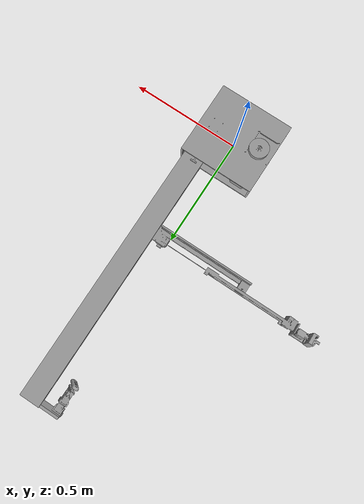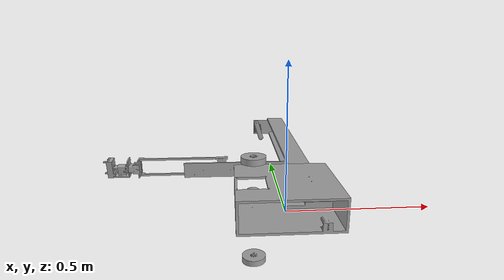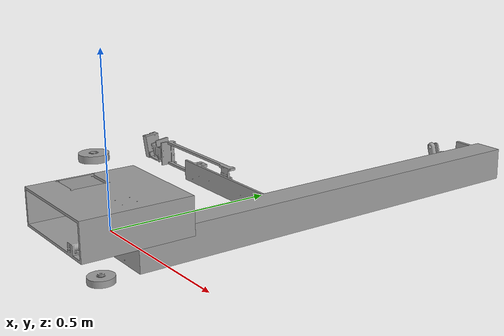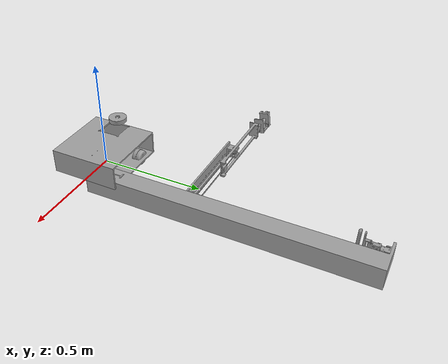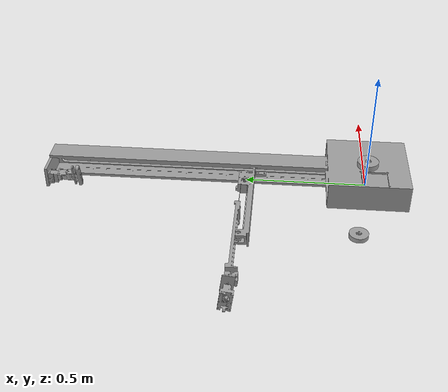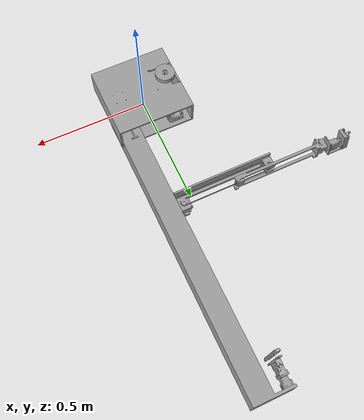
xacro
<?xml version="1.0" ?>
<robot name="ssmm_robot" xmlns:xacro="http://www.ros.org/wiki/xacro">

<xacro:include filename="$(find ssmm_robot_description)/urdf/materials.xacro" />
<xacro:include filename="$(find ssmm_robot_description)/urdf/ssmm_robot.trans" />
<xacro:include filename="$(find ssmm_robot_description)/urdf/ssmm_robot.gazebo" />
  <!-- Joint Control -->
  <gazebo>
    <plugin name="gazebo_ros_control" filename="libgazebo_ros_control.so">
      <robotNamespace>/</robotNamespace>
    </plugin>
  </gazebo>
  <gazebo reference="base_to_lw">
      <mu1 value="100.0"/>
      <mu2 value="200.0"/>
      <kp value="10000000.0" />
      <kd value="100.0" />
      <material>Gazebo/Blue</material>
      <minDepth>0.001</minDepth>
  </gazebo>

  <gazebo reference="base_to_rw">
      <mu1 value="100.0"/>
      <mu2 value="200.0"/>
      <kp value="10000000.0" />
      <kd value="100.0" />
      <material>Gazebo/Blue</material>
      <minDepth>0.001</minDepth>
  </gazebo>

  <gazebo reference="link1_to_2">
      <mu1 value="100.0"/>
      <mu2 value="200.0"/>
      <kp value="10000000.0" />
      <kd value="100.0" />
      <material>Gazebo/Blue</material>
      <minDepth>0.001</minDepth>
  </gazebo>

  <gazebo reference="link2_to_3">
      <mu1 value="100.0"/>
      <mu2 value="200.0"/>
      <kp value="10000000.0" />
      <kd value="100.0" />
      <material>Gazebo/Blue</material>
      <minDepth>0.001</minDepth>
  </gazebo>

  <gazebo reference="ee_to_finger">
      <mu1 value="100.0"/>
      <mu2 value="200.0"/>
      <kp value="10000000.0" />
      <kd value="100.0" />
      <material>Gazebo/Blue</material>
      <minDepth>0.001</minDepth>
  </gazebo>

  <gazebo reference="link3_to_ee">
      <mu1 value="100.0"/>
      <mu2 value="200.0"/>
      <kp value="10000000.0" />
      <kd value="100.0" />
      <material>Gazebo/Blue</material>
      <minDepth>0.001</minDepth>
  </gazebo>

  <gazebo reference="clink1_to_2">
      <mu1 value="100.0"/>
      <mu2 value="200.0"/>
      <kp value="10000000.0" />
      <kd value="100.0" />
      <material>Gazebo/Blue</material>
      <minDepth>0.001</minDepth>
  </gazebo>

  <gazebo reference="clink2_to_cam">
      <mu1 value="100.0"/>
      <mu2 value="200.0"/>
      <kp value="10000000.0" />
      <kd value="100.0" />
      <material>Gazebo/Blue</material>
      <minDepth>0.001</minDepth>
  </gazebo>

  <gazebo reference="link1_to_clink1">
      <mu1 value="100.0"/>
      <mu2 value="200.0"/>
      <kp value="10000000.0" />
      <kd value="100.0" />
      <material>Gazebo/Blue</material>
      <minDepth>0.001</minDepth>
  </gazebo>

  <!-- diff_drive controller -->
  <gazebo>
    <plugin filename="libgazebo_ros_diff_drive.so" name="diff_drive">
      <ros>
        <namespace>/ssmm_robot</namespace>
      </ros>
      <!-- wheels -->
      <left_joint>base_to_lw</left_joint>
      <right_joint>base_to_rw</right_joint>
      <!-- kinematics -->
      <wheel_separation>0.365</wheel_separation>
      <wheel_diameter>0.02</wheel_diameter>
      <!-- limits -->
      <max_wheel_torque>10</max_wheel_torque>
      <max_wheel_acceleration>1.0</max_wheel_acceleration>
      <!-- output -->
      <publish_odom>true</publish_odom>
      <publish_odom_tf>true</publish_odom_tf>
      <publish_wheel_tf>true</publish_wheel_tf>
      <odometry_frame>odom</odometry_frame>
      <robot_base_frame>robot_footprint</robot_base_frame>
    </plugin>
  </gazebo>
  <gazebo reference="laser">
    <sensor name="head_rplidar_sensor" type="ray">
      <pose>0 0 0.06 0 0 0</pose>
      <visualize>false</visualize>
      <update_rate>40</update_rate>
      <ray>
        <scan>
          <horizontal>
            <samples>720</samples>
            <resolution>1</resolution>
            <min_angle>-3.14159265</min_angle>
            <max_angle>3.14159265</max_angle>
          </horizontal>
        </scan>
        <range>
          <min>0.2</min>
          <max>12.0</max>
          <resolution>0.01</resolution>
        </range>
        <noise>
          <type>gaussian</type>
          <mean>0.0</mean>
          <stddev>0.01</stddev>
        </noise>
      </ray>
      <plugin filename="libgazebo_ros_laser.so" name="gazebo_ros_head_rplidar_controller">
        <topicName>scan</topicName>
        <frameName>laser</frameName>
      </plugin>
    </sensor>
  </gazebo>

<link name="base_link">
  <inertial>
    <origin xyz="-0.005863107158817645 0.04575054627281796 0.0007562083206319891" rpy="0 0 0"/>
    <mass value="30.87189983413398"/>
    <inertia ixx="0.211334" iyy="0.411846" izz="0.283613" ixy="0.003467" iyz="-0.000758" ixz="-0.001619"/>
  </inertial>
  <visual>
    <origin xyz="0 0 0" rpy="0 0 0"/>
    <geometry>
      <mesh filename="file://$(find ssmm_robot_description)/meshes/base_link.stl" scale="0.001 0.001 0.001"/>
    </geometry>
    <material name="Steel-Satin"/>
  </visual>
  <collision>
    <origin xyz="0 0 0" rpy="0 0 0"/>
    <geometry>
      <mesh filename="file://$(find ssmm_robot_description)/meshes/base_link.stl" scale="0.001 0.001 0.001"/>
    </geometry>
  </collision>
</link>

<link name="right_wheel_1">
  <inertial>
    <origin xyz="-5.182139952986109e-07 2.113675778504104e-06 -0.010701855614137695" rpy="0 0 0"/>
    <mass value="2.9090455014442554"/>
    <inertia ixx="0.000439" iyy="0.000439" izz="0.000806" ixy="-0.0" iyz="-0.0" ixz="0.0"/>
  </inertial>
  <visual>
    <origin xyz="0.1065 -0.013805 0.172" rpy="0 0 0"/>
    <geometry>
      <mesh filename="file://$(find ssmm_robot_description)/meshes/right_wheel_1.stl" scale="0.001 0.001 0.001"/>
    </geometry>
    <material name="Steel-Satin"/>
  </visual>
  <collision>
    <origin xyz="0.1065 -0.013805 0.172" rpy="0 0 0"/>
    <geometry>
      <mesh filename="file://$(find ssmm_robot_description)/meshes/right_wheel_1.stl" scale="0.001 0.001 0.001"/>
    </geometry>
  </collision>
</link>

<link name="left_wheel_1">
  <inertial>
    <origin xyz="1.7220952615165652e-06 4.37429839772116e-07 0.010701855614138778" rpy="0 0 0"/>
    <mass value="2.9090455014442554"/>
    <inertia ixx="0.000439" iyy="0.000439" izz="0.000806" ixy="-0.0" iyz="-0.0" ixz="0.0"/>
  </inertial>
  <visual>
    <origin xyz="0.1065 -0.013805 -0.172" rpy="0 0 0"/>
    <geometry>
      <mesh filename="file://$(find ssmm_robot_description)/meshes/left_wheel_1.stl" scale="0.001 0.001 0.001"/>
    </geometry>
    <material name="Steel-Satin"/>
  </visual>
  <collision>
    <origin xyz="0.1065 -0.013805 -0.172" rpy="0 0 0"/>
    <geometry>
      <mesh filename="file://$(find ssmm_robot_description)/meshes/left_wheel_1.stl" scale="0.001 0.001 0.001"/>
    </geometry>
  </collision>
</link>

<link name="lidar_1">
  <inertial>
    <origin xyz="0.02184456766960491 0.01847175439835766 -0.020891965661404416" rpy="0 0 0"/>
    <mass value="1.2417406970778717"/>
    <inertia ixx="0.00057" iyy="0.000824" izz="0.000571" ixy="-1.4e-05" iyz="0.0" ixz="-0.0"/>
  </inertial>
  <visual>
    <origin xyz="0.12286 -0.105805 -0.02086" rpy="0 0 0"/>
    <geometry>
      <mesh filename="file://$(find ssmm_robot_description)/meshes/lidar_1.stl" scale="0.001 0.001 0.001"/>
    </geometry>
    <material name="Steel-Satin"/>
  </visual>
  <collision>
    <origin xyz="0.12286 -0.105805 -0.02086" rpy="0 0 0"/>
    <geometry>
      <mesh filename="file://$(find ssmm_robot_description)/meshes/lidar_1.stl" scale="0.001 0.001 0.001"/>
    </geometry>
  </collision>
</link>

<link name="link1_1">
  <inertial>
    <origin xyz="-0.04033138487092916 0.6633077556425968 -0.01812836603627352" rpy="0 0 0"/>
    <mass value="5.96780432628329"/>
    <inertia ixx="7.154031" iyy="0.104871" izz="7.147721" ixy="-0.043124" iyz="0.009354" ixz="0.002741"/>
  </inertial>
  <visual>
    <origin xyz="-0.162 0.000195 -0.0" rpy="0 0 0"/>
    <geometry>
      <mesh filename="file://$(find ssmm_robot_description)/meshes/link1_1.stl" scale="0.001 0.001 0.001"/>
    </geometry>
    <material name="Steel-Satin"/>
  </visual>
  <collision>
    <origin xyz="-0.162 0.000195 -0.0" rpy="0 0 0"/>
    <geometry>
      <mesh filename="file://$(find ssmm_robot_description)/meshes/link1_1.stl" scale="0.001 0.001 0.001"/>
    </geometry>
  </collision>
</link>

<link name="link2_1">
  <inertial>
    <origin xyz="-0.045142791715321096 -0.19606954933097748 -0.06911332341098089" rpy="0 0 0"/>
    <mass value="3.295728592459467"/>
    <inertia ixx="0.004629" iyy="0.12256" izz="0.122353" ixy="-0.003262" iyz="0.001047" ixz="0.008336"/>
  </inertial>
  <visual>
    <origin xyz="0.043764 -0.683525 -0.042852" rpy="0 0 0"/>
    <geometry>
      <mesh filename="file://$(find ssmm_robot_description)/meshes/link2_1.stl" scale="0.001 0.001 0.001"/>
    </geometry>
    <material name="Steel-Satin"/>
  </visual>
  <collision>
    <origin xyz="0.043764 -0.683525 -0.042852" rpy="0 0 0"/>
    <geometry>
      <mesh filename="file://$(find ssmm_robot_description)/meshes/link2_1.stl" scale="0.001 0.001 0.001"/>
    </geometry>
  </collision>
</link>

<link name="link3_1">
  <inertial>
    <origin xyz="-0.2850129727947359 -0.0031400206997594937 0.029010042152578054" rpy="0 0 0"/>
    <mass value="1.5299135110418516"/>
    <inertia ixx="0.001243" iyy="0.040771" izz="0.039865" ixy="-0.00032" iyz="3e-06" ixz="0.000146"/>
  </inertial>
  <visual>
    <origin xyz="0.181063 -0.5243 0.038348" rpy="0 0 0"/>
    <geometry>
      <mesh filename="file://$(find ssmm_robot_description)/meshes/link3_1.stl" scale="0.001 0.001 0.001"/>
    </geometry>
    <material name="Steel-Satin"/>
  </visual>
  <collision>
    <origin xyz="0.181063 -0.5243 0.038348" rpy="0 0 0"/>
    <geometry>
      <mesh filename="file://$(find ssmm_robot_description)/meshes/link3_1.stl" scale="0.001 0.001 0.001"/>
    </geometry>
  </collision>
</link>

<link name="finger_1">
  <inertial>
    <origin xyz="0.08376215160298628 0.1462343588963077 0.049081409741296635" rpy="0 0 0"/>
    <mass value="0.06862731061297314"/>
    <inertia ixx="1.3e-05" iyy="1.5e-05" izz="7e-06" ixy="-2e-06" iyz="3e-06" ixz="2e-06"/>
  </inertial>
  <visual>
    <origin xyz="0.811605 -0.390526 0.037181" rpy="0 0 0"/>
    <geometry>
      <mesh filename="file://$(find ssmm_robot_description)/meshes/finger_1.stl" scale="0.001 0.001 0.001"/>
    </geometry>
    <material name="Steel-Satin"/>
  </visual>
  <collision>
    <origin xyz="0.811605 -0.390526 0.037181" rpy="0 0 0"/>
    <geometry>
      <mesh filename="file://$(find ssmm_robot_description)/meshes/finger_1.stl" scale="0.001 0.001 0.001"/>
    </geometry>
  </collision>
</link>

<link name="EE_1">
  <inertial>
    <origin xyz="-0.0512209053928 0.0006724270522667775 -0.009976357642482692" rpy="0 0 0"/>
    <mass value="1.0983178587023812"/>
    <inertia ixx="0.000713" iyy="0.001473" izz="0.001168" ixy="-3.1e-05" iyz="3.7e-05" ixz="4.5e-05"/>
  </inertial>
  <visual>
    <origin xyz="0.640295 -0.5289 0.008948" rpy="0 0 0"/>
    <geometry>
      <mesh filename="file://$(find ssmm_robot_description)/meshes/EE_1.stl" scale="0.001 0.001 0.001"/>
    </geometry>
    <material name="Steel-Satin"/>
  </visual>
  <collision>
    <origin xyz="0.640295 -0.5289 0.008948" rpy="0 0 0"/>
    <geometry>
      <mesh filename="file://$(find ssmm_robot_description)/meshes/EE_1.stl" scale="0.001 0.001 0.001"/>
    </geometry>
  </collision>
</link>

<link name="cam_link2_1">
  <inertial>
    <origin xyz="9.170244404446898e-05 -0.025125670517273546 -0.00030164472977530984" rpy="0 0 0"/>
    <mass value="0.42686609646334744"/>
    <inertia ixx="0.000143" iyy="8e-05" izz="0.000138" ixy="0.0" iyz="-1e-06" ixz="2e-06"/>
  </inertial>
  <visual>
    <origin xyz="-0.0005 -1.317305 0.02" rpy="0 0 0"/>
    <geometry>
      <mesh filename="file://$(find ssmm_robot_description)/meshes/cam_link2_1.stl" scale="0.001 0.001 0.001"/>
    </geometry>
    <material name="Steel-Satin"/>
  </visual>
  <collision>
    <origin xyz="-0.0005 -1.317305 0.02" rpy="0 0 0"/>
    <geometry>
      <mesh filename="file://$(find ssmm_robot_description)/meshes/cam_link2_1.stl" scale="0.001 0.001 0.001"/>
    </geometry>
  </collision>
</link>

<link name="realsense_1">
  <inertial>
    <origin xyz="-0.005530128850191665 -0.03227737031778943 0.01820648081050744" rpy="0 0 0"/>
    <mass value="0.2684626559675161"/>
    <inertia ixx="0.000284" iyy="0.000266" izz="9.3e-05" ixy="-0.0" iyz="0.0" ixz="6.4e-05"/>
  </inertial>
  <visual>
    <origin xyz="-0.006027 -1.276305 0.038178" rpy="0 0 0"/>
    <geometry>
      <mesh filename="file://$(find ssmm_robot_description)/meshes/realsense_1.stl" scale="0.001 0.001 0.001"/>
    </geometry>
    <material name="Steel-Satin"/>
  </visual>
  <collision>
    <origin xyz="-0.006027 -1.276305 0.038178" rpy="0 0 0"/>
    <geometry>
      <mesh filename="file://$(find ssmm_robot_description)/meshes/realsense_1.stl" scale="0.001 0.001 0.001"/>
    </geometry>
  </collision>
</link>

<link name="cam_link1_1">
  <inertial>
    <origin xyz="0.01049999535594094 -0.019834457321954435 -0.021573797470935505" rpy="0 0 0"/>
    <mass value="0.4832984019325356"/>
    <inertia ixx="0.000157" iyy="0.000146" izz="0.000115" ixy="0.0" iyz="1e-06" ixz="-0.0"/>
  </inertial>
  <visual>
    <origin xyz="0.01 -1.359805 0.01" rpy="0 0 0"/>
    <geometry>
      <mesh filename="file://$(find ssmm_robot_description)/meshes/cam_link1_1.stl" scale="0.001 0.001 0.001"/>
    </geometry>
    <material name="Steel-Satin"/>
  </visual>
  <collision>
    <origin xyz="0.01 -1.359805 0.01" rpy="0 0 0"/>
    <geometry>
      <mesh filename="file://$(find ssmm_robot_description)/meshes/cam_link1_1.stl" scale="0.001 0.001 0.001"/>
    </geometry>
  </collision>
</link>

<joint name="base_to_rw" type="continuous">
  <origin xyz="-0.1065 0.013805 -0.172" rpy="0 0 0"/>
  <parent link="base_link"/>
  <child link="right_wheel_1"/>
  <axis xyz="0.0 0.0 1.0"/>
</joint>

<joint name="base_to_lw" type="continuous">
  <origin xyz="-0.1065 0.013805 0.172" rpy="0 0 0"/>
  <parent link="base_link"/>
  <child link="left_wheel_1"/>
  <axis xyz="0.0 0.0 1.0"/>
</joint>

<joint name="base_to_lidar" type="fixed">
  <origin xyz="-0.12286 0.105805 0.02086" rpy="0 0 0"/>
  <parent link="base_link"/>
  <child link="lidar_1"/>
</joint>

<joint name="base_to_link1" type="fixed">
  <origin xyz="0.162 -0.000195 0.0" rpy="0 0 0"/>
  <parent link="base_link"/>
  <child link="link1_1"/>
</joint>

<joint name="link1_to_2" type="prismatic">
  <origin xyz="-0.205764 0.68372 0.042852" rpy="0 0 0"/>
  <parent link="link1_1"/>
  <child link="link2_1"/>
  <axis xyz="0.0 -1.0 -0.0"/>
  <limit upper="0.0" lower="0.0" effort="100" velocity="100"/>
</joint>

<joint name="link2_to_3" type="prismatic">
  <origin xyz="-0.137299 -0.159225 -0.0812" rpy="0 0 0"/>
  <parent link="link2_1"/>
  <child link="link3_1"/>
  <axis xyz="-1.0 -0.0 0.0"/>
  <limit upper="0.0" lower="0.0" effort="100" velocity="100"/>
</joint>

<joint name="ee_to_finger" type="prismatic">
  <origin xyz="-0.17131 -0.138374 -0.028233" rpy="0 0 0"/>
  <parent link="EE_1"/>
  <child link="finger_1"/>
  <axis xyz="0.0 0.132623 -0.991167"/>
  <limit upper="0.0" lower="0.0" effort="100" velocity="100"/>
</joint>

<joint name="link3_to_ee" type="revolute">
  <origin xyz="-0.459232 0.0046 0.0294" rpy="0 0 0"/>
  <parent link="link3_1"/>
  <child link="EE_1"/>
  <axis xyz="-1.0 -0.0 -0.0"/>
  <limit effort="0" lower="0" upper="0" velocity="0"/>
</joint>

<joint name="clink1_to_2" type="revolute">
  <origin xyz="0.0105 -0.0425 -0.01" rpy="0 0 0"/>
  <parent link="cam_link1_1"/>
  <child link="cam_link2_1"/>
  <axis xyz="0.0 -1.0 -0.0"/>
  <limit effort="0" lower="0" upper="0" velocity="0"/>
</joint>

<joint name="clink2_to_cam" type="revolute">
  <origin xyz="0.005527 -0.041 -0.018178" rpy="0 0 0"/>
  <parent link="cam_link2_1"/>
  <child link="realsense_1"/>
  <axis xyz="0 0.0 -1"/>
  <limit effort="0" lower="0" upper="0" velocity="0"/>
</joint>

<joint name="link1_to_clink1" type="fixed">
  <origin xyz="-0.172 1.36 -0.01" rpy="0 0 0"/>
  <parent link="link1_1"/>
  <child link="cam_link1_1"/>
</joint>

</robot>

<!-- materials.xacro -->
<robot name="ssmm_robot" xmlns:xacro="http://www.ros.org/wiki/xacro" >

  <material name="Steel-Satin">
    <color rgba="0.627 0.627 0.627 1.0"/>
  </material>

</robot>

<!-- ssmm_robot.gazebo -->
<robot name="ssmm_robot" xmlns:xacro="http://www.ros.org/wiki/xacro" >

<xacro:property name="body_color" value="Gazebo/Silver" />

<gazebo>
  <plugin name="control" filename="libgazebo_ros_control.so"/>
</gazebo>
<gazebo reference="base_link">
  <material>${body_color}</material>
  <mu1>0.2</mu1>
  <mu2>0.2</mu2>
  <self_collide>true</self_collide>
  <gravity>true</gravity>
</gazebo>

<gazebo reference="right_wheel_1">
  <material>${body_color}</material>
  <mu1>0.2</mu1>
  <mu2>0.2</mu2>
  <self_collide>true</self_collide>
</gazebo>

<gazebo reference="left_wheel_1">
  <material>${body_color}</material>
  <mu1>0.2</mu1>
  <mu2>0.2</mu2>
  <self_collide>true</self_collide>
</gazebo>

<gazebo reference="lidar_1">
  <material>${body_color}</material>
  <mu1>0.2</mu1>
  <mu2>0.2</mu2>
  <self_collide>true</self_collide>
</gazebo>

<gazebo reference="link1_1">
  <material>${body_color}</material>
  <mu1>0.2</mu1>
  <mu2>0.2</mu2>
  <self_collide>true</self_collide>
</gazebo>

<gazebo reference="link2_1">
  <material>${body_color}</material>
  <mu1>0.2</mu1>
  <mu2>0.2</mu2>
  <self_collide>true</self_collide>
</gazebo>

<gazebo reference="link3_1">
  <material>${body_color}</material>
  <mu1>0.2</mu1>
  <mu2>0.2</mu2>
  <self_collide>true</self_collide>
</gazebo>

<gazebo reference="finger_1">
  <material>${body_color}</material>
  <mu1>0.2</mu1>
  <mu2>0.2</mu2>
  <self_collide>true</self_collide>
</gazebo>

<gazebo reference="EE_1">
  <material>${body_color}</material>
  <mu1>0.2</mu1>
  <mu2>0.2</mu2>
  <self_collide>true</self_collide>
</gazebo>

<gazebo reference="cam_link2_1">
  <material>${body_color}</material>
  <mu1>0.2</mu1>
  <mu2>0.2</mu2>
  <self_collide>true</self_collide>
</gazebo>

<gazebo reference="realsense_1">
  <material>${body_color}</material>
  <mu1>0.2</mu1>
  <mu2>0.2</mu2>
  <self_collide>true</self_collide>
</gazebo>

<gazebo reference="cam_link1_1">
  <material>${body_color}</material>
  <mu1>0.2</mu1>
  <mu2>0.2</mu2>
  <self_collide>true</self_collide>
</gazebo>

</robot>
